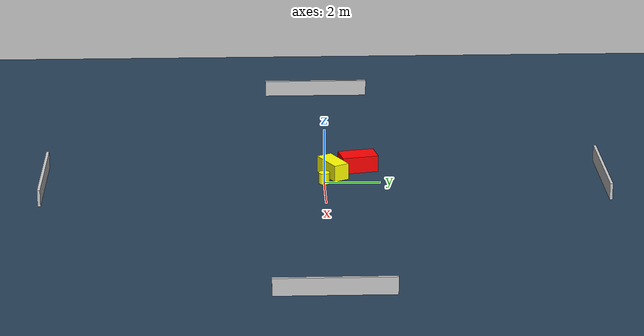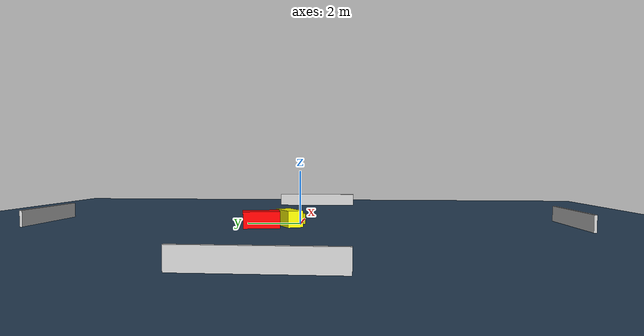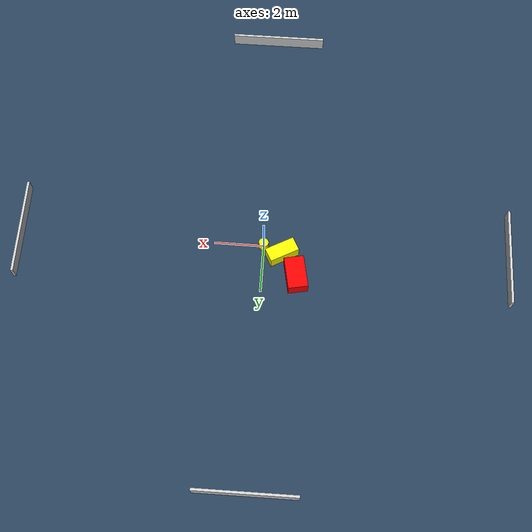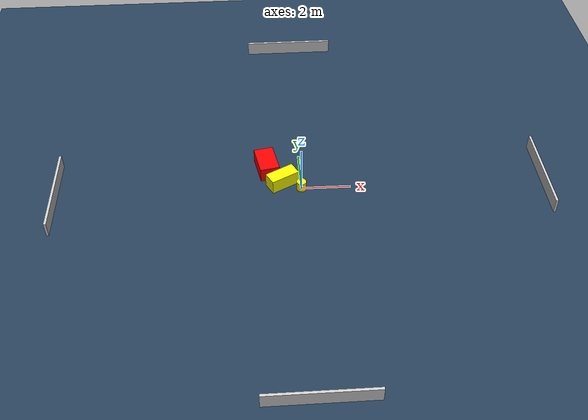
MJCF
<?xml version="1.0" ?>
<mujoco model="generated_environment">
  <option timestep="0.01" integrator="RK4" cone="elliptic"/>
  <default>
    <geom density="1"/>
  </default>
  <asset>
    <texture builtin="gradient" height="3072" name="skybox" rgb1="0.3 0.5 0.7" rgb2="0 0 0" type="skybox" width="512"/>
    <texture builtin="checker" height="300" name="groundplane" rgb1="0.2 0.3 0.4" rgb2="0.1 0.2 0.3" type="2d" width="300"/>
    <material name="groundplane" reflectance="0.2" texrepeat="5 5" texture="groundplane"/>
  </asset>
  <worldbody>
    <light dir="0 0 -1" directional="true" pos="0 0 1.5"/>
    <geom condim="3" friction="0.5 0.005 0.001" material="groundplane" name="floor" pos="0 0 0" size="0 0 0.05" type="plane"/>
    <body name="walls">
      <geom name="wall_1" condim="4" pos="-10.0 0.0 0.3" rgba="0.800000011920929 0.800000011920929 0.800000011920929 1.0" size="0.05 2.0 0.3" type="box"/>
      <geom name="wall_2" condim="4" pos="10.0 0.0 0.3" rgba="0.800000011920929 0.800000011920929 0.800000011920929 1.0" size="0.05 2.0 0.3" type="box"/>
      <geom name="wall_3" condim="4" pos="0.0 -10.0 0.3" rgba="0.800000011920929 0.800000011920929 0.800000011920929 1.0" size="2.0 0.05 0.3" type="box"/>
      <geom name="wall_4" condim="4" pos="0.0 10.0 0.3" rgba="0.800000011920929 0.800000011920929 0.800000011920929 1.0" size="2.0 0.05 0.3" type="box"/>
    </body>
    <body name="robot">
      <joint name="joint_x" type="slide" pos="0 0 0" axis="1 0 0"/>
      <joint name="joint_y" type="slide" pos="0 0 0" axis="0 1 0"/>
      <geom name="robot" type="cylinder" pos="0.0 0.0 0.2" size="0.2 0.2 0.0" mass="5.0" friction="1.0 0.005 0.0001" condim="4" rgba="1.0 1.0 0.0 1.0"/>
    </body>
    <body name="obstacle_1_movable">
      <geom name="obstacle_1_movable" condim="4" pos="-0.765910315257749 0.33476215984517876 0.3" euler="0 0 118.3472163125048" friction="0.0 0.005 0.001" rgba="1.0 1.0 0.0 1.0" size="0.2903425067010952 0.6225207852548175 0.3" type="box" mass="0.1"/>
      <joint type="free"/>
    </body>
    <body name="obstacle_2_static">
      <geom name="obstacle_2_static" condim="4" pos="-1.380622626848249 1.278904257442432 0.3" euler="0 0 191.03157772591786" friction="0.0 0.005 0.001" rgba="1.0 0.0 0.0 1.0" size="0.40218927534951454 0.6581053997903678 0.3" type="box"/>
    </body>
  </worldbody>
  <actuator>
    <motor name="actuator_x" joint="joint_x" gear="1" ctrlrange="-1 1"/>
    <motor name="actuator_y" joint="joint_y" gear="1" ctrlrange="-1 1"/>
  </actuator>
</mujoco>
